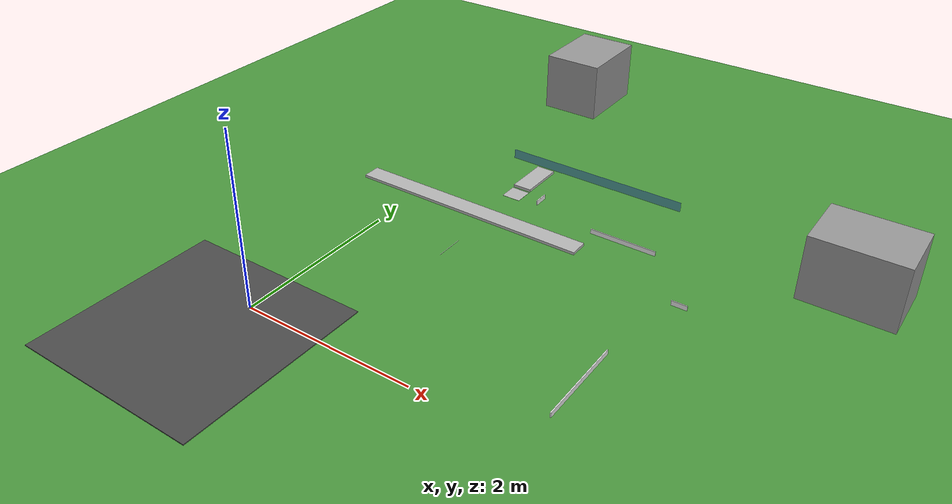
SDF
<sdf version="1.7">
 <world name="default">
  <model name="ground_plane">
   <static>1</static>
   <link name="link">
    <collision name="collision">
     <geometry><plane><normal>0 0 1</normal><size>100 100</size></plane></geometry>
     <surface><friction><ode><mu>100</mu><mu2>50</mu2></ode></friction></surface>
    </collision>
    <visual name="visual">
     <cast_shadows>0</cast_shadows>
     <geometry><plane><normal>0 0 1</normal><size>100 100</size></plane></geometry>
     <material>
      <script><uri>file://media/materials/scripts/gazebo.material</uri><name>Gazebo/Grass</name></script>
     </material>
    </visual>
   </link>
  </model>
  <model name="sidewalk_northeast">
   <static>1</static>
   <pose>0.726633 2.74893 0.05 0 -0 0</pose>
   <link name="link">
    <collision name="collision"><geometry><box><size>2.90996 0.222222 0.033333</size></box></geometry></collision>
    <visual name="visual">
     <geometry><box><size>2.90996 0.222222 0.033333</size></box></geometry>
     <material>
      <script><uri>file://media/materials/scripts/gazebo.material</uri><name>Gazebo/Concrete</name></script>
     </material>
    </visual>
   </link>
  </model>
  <model name="apartment_north_3">
   <static>1</static>
   <pose>1.00953 4.94677 1 0 -0 0</pose>
   <link name="link">
    <collision name="collision">
     <geometry><box><size>0.666666 0.888889 0.666666</size></box></geometry>
    </collision>
    <visual name="visual">
     <geometry><box><size>0.666666 0.888889 0.666666</size></box></geometry>
     <material>
      <script><uri>file://media/materials/scripts/gazebo.material</uri><name>Gazebo/Grey</name></script>
     </material>
    </visual>
   </link>
  </model>
  <model name="apartment_east_1">
   <static>1</static>
   <pose>5.0068 2.68735 1 0 -0 0</pose>
   <link name="link">
    <collision name="collision">
     <geometry><box><size>0.888889 0.666666 0.666666</size></box></geometry>
    </collision>
    <visual name="visual">
     <geometry><box><size>0.888889 0.666666 0.666666</size></box></geometry>
     <material>
      <script><uri>file://media/materials/scripts/gazebo.material</uri><name>Gazebo/Grey</name></script>
     </material>
    </visual>
   </link>
  </model>
  <model name="parking_line_3">
   <static>1</static>
   <pose>1 2 0.02 0 -0 0</pose>
   <link name="link">
    <visual name="visual">
     <geometry><box><size>0.00555599 0.333333 0.001111</size></box></geometry>
     <material>
      <script><uri>file://media/materials/scripts/gazebo.material</uri><name>Gazebo/White</name></script>
     </material>
    </visual>
   </link>
  </model>
  <model name="asphalt_plane">
   <static>1</static>
   <link name="link">
    <collision name="collision"><geometry><box><size>2.22222 2.22222 0.011111</size></box></geometry></collision>
    <visual name="visual">
     <cast_shadows>0</cast_shadows>
     <geometry><box><size>2.22222 2.22222 0.011111</size></box></geometry>
     <material>
      <script>
       <uri>model://asphalt_plane/materials/scripts</uri>
       <uri>model://asphalt_plane/materials/textures</uri>
       <name>vrc/asphalt</name>
      </script>
     </material>
    </visual>
   </link>
   <pose>-0.18955 -0.540283 0 0 -0 0</pose>
  </model>
  <model name="turtlebot_spawn_area_north">
   <static>1</static>
   <pose>1 3.33333 0.053333 0 -0 0</pose>
   <link name="link">
    <collision name="collision">
     <geometry><box><size>0.222222 0.222222 0.002222</size></box></geometry>
    </collision>
    <visual name="visual">
     <geometry><box><size>0.222222 0.222222 0.002222</size></box></geometry>
     <material>
      <script><uri>file://media/materials/scripts/gazebo.material</uri><name>Gazebo/Concrete</name></script>
     </material>
    </visual>
   </link>
  </model>
  <model name="fence_north_outer">
   <static>1</static>
   <pose>1.66667 4 0.166667 0 -0 0</pose>
   <link name="link">
    <collision name="collision"><geometry><box><size>2.22222 0.011111 0.111111</size></box></geometry></collision>
    <visual name="visual">
     <geometry><box><size>2.22222 0.011111 0.111111</size></box></geometry>
     <material>
      <script><uri>file://media/materials/scripts/gazebo.material</uri><name>Gazebo/BlueTransparent</name></script>
     </material>
    </visual>
   </link>
  </model>
  <model name="wall_parking_north_clone_clone_2">
   <static>1</static>
   <pose>2.52174 3.09636 0.083333 0 -0 0</pose>
   <link name="link">
    <collision name="collision">
     <geometry><box><size>0.780315 0.011111 0.0555559</size></box></geometry>
    </collision>
    <visual name="visual">
     <geometry><box><size>0.780315 0.011111 0.0555559</size></box></geometry>
     <material>
      <script><uri>file://media/materials/scripts/gazebo.material</uri><name>Gazebo/White</name></script>
     </material>
    </visual>
   </link>
  </model>
  <model name="wall_parking_north_clone_clone_3">
   <static>1</static>
   <pose>3.2631 0.86249 0.083333 0 0 -1.56833</pose>
   <link name="link">
    <collision name="collision">
     <geometry><box><size>1.02465 0.011111 0.0555559</size></box></geometry>
    </collision>
    <visual name="visual">
     <geometry><box><size>1.02465 0.011111 0.0555559</size></box></geometry>
     <material>
      <script><uri>file://media/materials/scripts/gazebo.material</uri><name>Gazebo/White</name></script>
     </material>
    </visual>
   </link>
  </model>
  <model name="wall_parking_north_clone_clone_2_clone">
   <static>1</static>
   <pose>3.50237 2.40838 0.083333 0 -0 0</pose>
   <link name="link">
    <collision name="collision">
     <geometry><box><size>0.172148 0.011111 0.0555559</size></box></geometry>
    </collision>
    <visual name="visual">
     <geometry><box><size>0.172148 0.011111 0.0555559</size></box></geometry>
     <material>
      <script><uri>file://media/materials/scripts/gazebo.material</uri><name>Gazebo/White</name></script>
     </material>
    </visual>
   </link>
  </model>
  <model name="wall_parking_north_clone_clone_3_clone_0">
   <static>1</static>
   <pose>1.33408 3.3441 0.083333 0 0 -1.56833</pose>
   <link name="link">
    <collision name="collision"><geometry><box><size>0.1767 0.011111 0.0555559</size></box></geometry></collision>
    <visual name="visual">
     <geometry><box><size>0.1767 0.011111 0.0555559</size></box></geometry>
     <material>
      <script><uri>file://media/materials/scripts/gazebo.material</uri><name>Gazebo/White</name></script>
     </material>
    </visual>
   </link>
  </model>
  <model name="sidewalk_southeast_clone">
   <static>1</static>
   <pose>0.983007 3.76863 0.05 0 -0 0</pose>
   <link name="link">
    <collision name="collision">
     <geometry><box><size>0.222222 0.548947 0.033333</size></box></geometry>
    </collision>
    <visual name="visual">
     <geometry><box><size>0.222222 0.548946 0.033333</size></box></geometry>
     <material>
      <script><uri>file://media/materials/scripts/gazebo.material</uri><name>Gazebo/Concrete</name></script>
     </material>
    </visual>
   </link>
  </model>
 </world>
</sdf>
